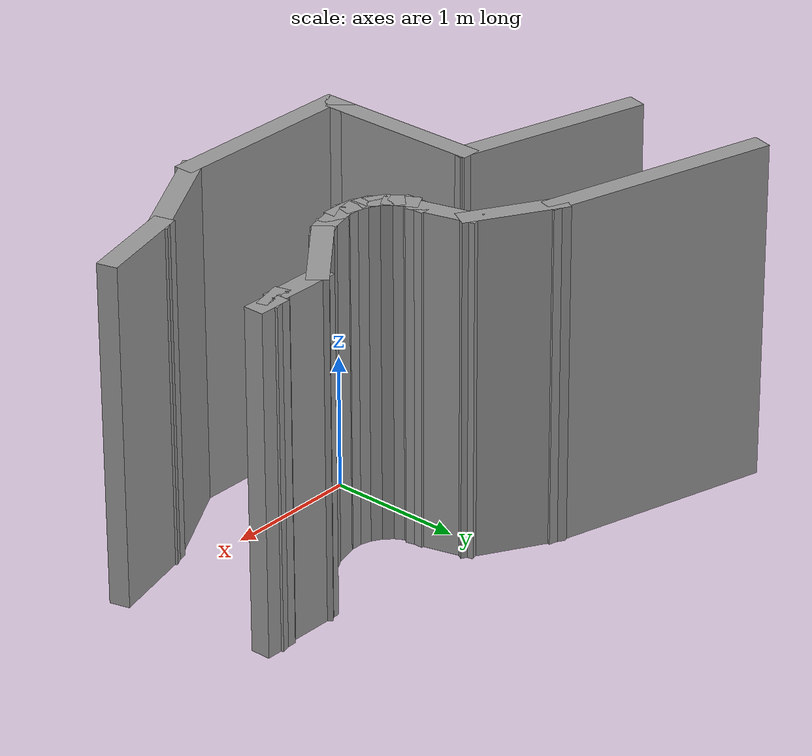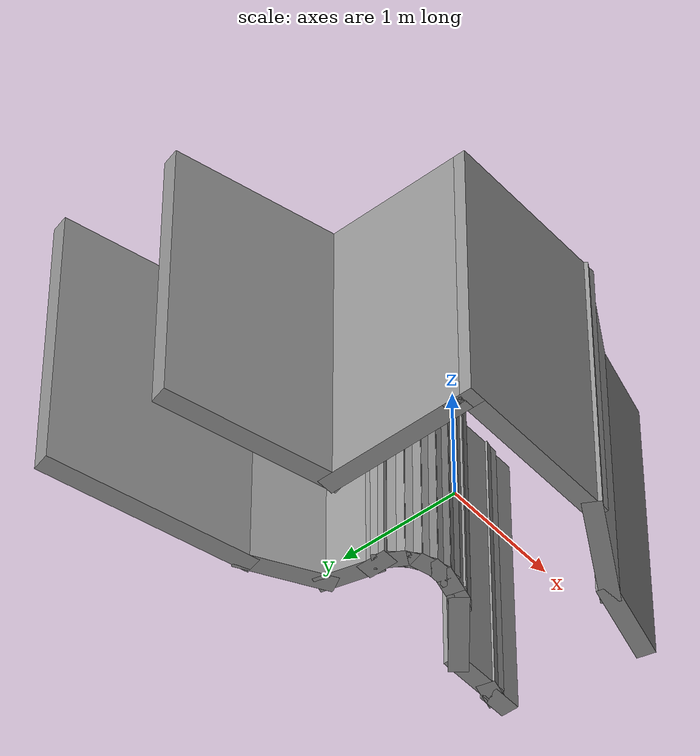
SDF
<?xml version='1.0'?>
<sdf version='1.7'>
  <model name='labirinth_startpoint_edit'>
    <pose>0.039839 0.654999 0 0 -0 0</pose>
    <link name='Wall_10'>
      <collision name='Wall_10_Collision'>
        <geometry>
          <box>
            <size>1.5 0.15 2.5</size>
          </box>
        </geometry>
        <pose>0 0 1.25 0 -0 0</pose>
      </collision>
      <visual name='Wall_10_Visual'>
        <pose>0 0 1.25 0 -0 0</pose>
        <geometry>
          <box>
            <size>1.5 0.15 2.5</size>
          </box>
        </geometry>
        <material>
          <script>
            <uri>file://media/materials/scripts/gazebo.material</uri>
            <name>Gazebo/Grey</name>
          </script>
          <ambient>1 1 1 1</ambient>
        </material>
        <meta>
          <layer>0</layer>
        </meta>
      </visual>
      <pose>0.019161 -1.28441 0 0 -0 0</pose>
    </link>
    <link name='Wall_11'>
      <collision name='Wall_11_Collision'>
        <geometry>
          <box>
            <size>1 0.15 2.5</size>
          </box>
        </geometry>
        <pose>0 0 1.25 0 -0 0</pose>
      </collision>
      <visual name='Wall_11_Visual'>
        <pose>0 0 1.25 0 -0 0</pose>
        <geometry>
          <box>
            <size>1 0.15 2.5</size>
          </box>
        </geometry>
        <material>
          <script>
            <uri>file://media/materials/scripts/gazebo.material</uri>
            <name>Gazebo/Grey</name>
          </script>
          <ambient>1 1 1 1</ambient>
        </material>
        <meta>
          <layer>0</layer>
        </meta>
      </visual>
      <pose>1.06222 -1.07191 0 0 -0 0.523599</pose>
    </link>
    <link name='Wall_12'>
      <collision name='Wall_12_Collision'>
        <geometry>
          <box>
            <size>0.75 0.15 2.5</size>
          </box>
        </geometry>
        <pose>0 0 1.25 0 -0 0</pose>
      </collision>
      <visual name='Wall_12_Visual'>
        <pose>0 0 1.25 0 -0 0</pose>
        <geometry>
          <box>
            <size>0.75 0.15 2.5</size>
          </box>
        </geometry>
        <material>
          <script>
            <uri>file://media/materials/scripts/gazebo.material</uri>
            <name>Gazebo/Grey</name>
          </script>
          <ambient>1 1 1 1</ambient>
        </material>
        <meta>
          <layer>0</layer>
        </meta>
      </visual>
      <pose>1.72006 -0.781759 0 0 -0 0.261799</pose>
    </link>
    <link name='Wall_15'>
      <collision name='Wall_15_Collision'>
        <geometry>
          <box>
            <size>1.75 0.15 2.5</size>
          </box>
        </geometry>
        <pose>0 0 1.25 0 -0 0</pose>
      </collision>
      <visual name='Wall_15_Visual'>
        <pose>0 0 1.25 0 -0 0</pose>
        <geometry>
          <box>
            <size>1.75 0.15 2.5</size>
          </box>
        </geometry>
        <material>
          <script>
            <uri>file://media/materials/scripts/gazebo.material</uri>
            <name>Gazebo/Grey</name>
          </script>
          <ambient>1 1 1 1</ambient>
        </material>
        <meta>
          <layer>0</layer>
        </meta>
      </visual>
      <pose>-1.2371 1.08795 0 0 -0 -0.261799</pose>
    </link>
    <link name='Wall_16'>
      <collision name='Wall_16_Collision'>
        <geometry>
          <box>
            <size>0.75 0.15 2.5</size>
          </box>
        </geometry>
        <pose>0 0 1.25 0 -0 0</pose>
      </collision>
      <visual name='Wall_16_Visual'>
        <pose>0 0 1.25 0 -0 0</pose>
        <geometry>
          <box>
            <size>0.75 0.15 2.5</size>
          </box>
        </geometry>
        <material>
          <script>
            <uri>file://media/materials/scripts/gazebo.material</uri>
            <name>Gazebo/Grey</name>
          </script>
          <ambient>1 1 1 1</ambient>
        </material>
        <meta>
          <layer>0</layer>
        </meta>
      </visual>
      <pose>-0.20455 0.73089 0 0 -0 -0.523599</pose>
    </link>
    <link name='Wall_17'>
      <collision name='Wall_17_Collision'>
        <geometry>
          <box>
            <size>0.5 0.15 2.5</size>
          </box>
        </geometry>
        <pose>0 0 1.25 0 -0 0</pose>
      </collision>
      <visual name='Wall_17_Visual'>
        <pose>0 0 1.25 0 -0 0</pose>
        <geometry>
          <box>
            <size>0.5 0.15 2.5</size>
          </box>
        </geometry>
        <material>
          <script>
            <uri>file://media/materials/scripts/gazebo.material</uri>
            <name>Gazebo/Grey</name>
          </script>
          <ambient>1 1 1 1</ambient>
        </material>
        <meta>
          <layer>0</layer>
        </meta>
      </visual>
      <pose>0.100551 0.411853 0 0 -0 -1.309</pose>
    </link>
    <link name='Wall_18'>
      <collision name='Wall_18_Collision'>
        <geometry>
          <box>
            <size>0.25 0.15 2.5</size>
          </box>
        </geometry>
        <pose>0 0 1.25 0 -0 0</pose>
      </collision>
      <visual name='Wall_18_Visual'>
        <pose>0 0 1.25 0 -0 0</pose>
        <geometry>
          <box>
            <size>0.25 0.15 2.5</size>
          </box>
        </geometry>
        <material>
          <script>
            <uri>file://media/materials/scripts/gazebo.material</uri>
            <name>Gazebo/Grey</name>
          </script>
          <ambient>1 1 1 1</ambient>
        </material>
        <meta>
          <layer>0</layer>
        </meta>
      </visual>
      <pose>0.145845 0.192816 0 0 -0 -1.5708</pose>
    </link>
    <link name='Wall_19'>
      <collision name='Wall_19_Collision'>
        <geometry>
          <box>
            <size>0.25 0.15 2.5</size>
          </box>
        </geometry>
        <pose>0 0 1.25 0 -0 0</pose>
      </collision>
      <visual name='Wall_19_Visual'>
        <pose>0 0 1.25 0 -0 0</pose>
        <geometry>
          <box>
            <size>0.25 0.15 2.5</size>
          </box>
        </geometry>
        <material>
          <script>
            <uri>file://media/materials/scripts/gazebo.material</uri>
            <name>Gazebo/Grey</name>
          </script>
          <ambient>1 1 1 1</ambient>
        </material>
        <meta>
          <layer>0</layer>
        </meta>
      </visual>
      <pose>0.170845 0.099515 0 0 -0 -1.0472</pose>
    </link>
    <link name='Wall_2'>
      <collision name='Wall_2_Collision'>
        <geometry>
          <box>
            <size>0.5 0.15 2.5</size>
          </box>
        </geometry>
        <pose>0 0 1.25 0 -0 0</pose>
      </collision>
      <visual name='Wall_2_Visual'>
        <pose>0 0 1.25 0 -0 0</pose>
        <geometry>
          <box>
            <size>0.5 0.15 2.5</size>
          </box>
        </geometry>
        <material>
          <script>
            <uri>file://media/materials/scripts/gazebo.material</uri>
            <name>Gazebo/Grey</name>
          </script>
          <ambient>1 1 1 1</ambient>
        </material>
        <meta>
          <layer>0</layer>
        </meta>
      </visual>
      <pose>1.47101 0.397957 0 0 -0 0</pose>
    </link>
    <link name='Wall_20'>
      <collision name='Wall_20_Collision'>
        <geometry>
          <box>
            <size>0.25 0.15 2.5</size>
          </box>
        </geometry>
        <pose>0 0 1.25 0 -0 0</pose>
      </collision>
      <visual name='Wall_20_Visual'>
        <pose>0 0 1.25 0 -0 0</pose>
        <geometry>
          <box>
            <size>0.25 0.15 2.5</size>
          </box>
        </geometry>
        <material>
          <script>
            <uri>file://media/materials/scripts/gazebo.material</uri>
            <name>Gazebo/Grey</name>
          </script>
          <ambient>1 1 1 1</ambient>
        </material>
        <meta>
          <layer>0</layer>
        </meta>
      </visual>
      <pose>0.2312 0.020859 0 0 -0 -0.785398</pose>
    </link>
    <link name='Wall_21'>
      <collision name='Wall_21_Collision'>
        <geometry>
          <box>
            <size>0.25 0.15 2.5</size>
          </box>
        </geometry>
        <pose>0 0 1.25 0 -0 0</pose>
      </collision>
      <visual name='Wall_21_Visual'>
        <pose>0 0 1.25 0 -0 0</pose>
        <geometry>
          <box>
            <size>0.25 0.15 2.5</size>
          </box>
        </geometry>
        <material>
          <script>
            <uri>file://media/materials/scripts/gazebo.material</uri>
            <name>Gazebo/Grey</name>
          </script>
          <ambient>1 1 1 1</ambient>
        </material>
        <meta>
          <layer>0</layer>
        </meta>
      </visual>
      <pose>0.309857 -0.039497 0 0 -0 -0.523599</pose>
    </link>
    <link name='Wall_22'>
      <collision name='Wall_22_Collision'>
        <geometry>
          <box>
            <size>0.25 0.15 2.5</size>
          </box>
        </geometry>
        <pose>0 0 1.25 0 -0 0</pose>
      </collision>
      <visual name='Wall_22_Visual'>
        <pose>0 0 1.25 0 -0 0</pose>
        <geometry>
          <box>
            <size>0.25 0.15 2.5</size>
          </box>
        </geometry>
        <material>
          <script>
            <uri>file://media/materials/scripts/gazebo.material</uri>
            <name>Gazebo/Grey</name>
          </script>
          <ambient>1 1 1 1</ambient>
        </material>
        <meta>
          <layer>0</layer>
        </meta>
      </visual>
      <pose>0.401454 -0.077438 0 0 -0 -0.261799</pose>
    </link>
    <link name='Wall_23'>
      <collision name='Wall_23_Collision'>
        <geometry>
          <box>
            <size>0.25 0.15 2.5</size>
          </box>
        </geometry>
        <pose>0 0 1.25 0 -0 0</pose>
      </collision>
      <visual name='Wall_23_Visual'>
        <pose>0 0 1.25 0 -0 0</pose>
        <geometry>
          <box>
            <size>0.25 0.15 2.5</size>
          </box>
        </geometry>
        <material>
          <script>
            <uri>file://media/materials/scripts/gazebo.material</uri>
            <name>Gazebo/Grey</name>
          </script>
          <ambient>1 1 1 1</ambient>
        </material>
        <meta>
          <layer>0</layer>
        </meta>
      </visual>
      <pose>0.49975 -0.090379 0 0 -0 0</pose>
    </link>
    <link name='Wall_24'>
      <collision name='Wall_24_Collision'>
        <geometry>
          <box>
            <size>0.25 0.15 2.5</size>
          </box>
        </geometry>
        <pose>0 0 1.25 0 -0 0</pose>
      </collision>
      <visual name='Wall_24_Visual'>
        <pose>0 0 1.25 0 -0 0</pose>
        <geometry>
          <box>
            <size>0.25 0.15 2.5</size>
          </box>
        </geometry>
        <material>
          <script>
            <uri>file://media/materials/scripts/gazebo.material</uri>
            <name>Gazebo/Grey</name>
          </script>
          <ambient>1 1 1 1</ambient>
        </material>
        <meta>
          <layer>0</layer>
        </meta>
      </visual>
      <pose>0.598047 -0.077438 0 0 -0 0.261799</pose>
    </link>
    <link name='Wall_25'>
      <collision name='Wall_25_Collision'>
        <geometry>
          <box>
            <size>0.25 0.15 2.5</size>
          </box>
        </geometry>
        <pose>0 0 1.25 0 -0 0</pose>
      </collision>
      <visual name='Wall_25_Visual'>
        <pose>0 0 1.25 0 -0 0</pose>
        <geometry>
          <box>
            <size>0.25 0.15 2.5</size>
          </box>
        </geometry>
        <material>
          <script>
            <uri>file://media/materials/scripts/gazebo.material</uri>
            <name>Gazebo/Grey</name>
          </script>
          <ambient>1 1 1 1</ambient>
        </material>
        <meta>
          <layer>0</layer>
        </meta>
      </visual>
      <pose>0.694639 -0.051556 0 0 -0 0.261799</pose>
    </link>
    <link name='Wall_26'>
      <collision name='Wall_26_Collision'>
        <geometry>
          <box>
            <size>0.25 0.15 2.5</size>
          </box>
        </geometry>
        <pose>0 0 1.25 0 -0 0</pose>
      </collision>
      <visual name='Wall_26_Visual'>
        <pose>0 0 1.25 0 -0 0</pose>
        <geometry>
          <box>
            <size>0.25 0.15 2.5</size>
          </box>
        </geometry>
        <material>
          <script>
            <uri>file://media/materials/scripts/gazebo.material</uri>
            <name>Gazebo/Grey</name>
          </script>
          <ambient>1 1 1 1</ambient>
        </material>
        <meta>
          <layer>0</layer>
        </meta>
      </visual>
      <pose>0.786237 -0.013615 0 0 -0 0.523599</pose>
    </link>
    <link name='Wall_27'>
      <collision name='Wall_27_Collision'>
        <geometry>
          <box>
            <size>0.755835 0.15 2.5</size>
          </box>
        </geometry>
        <pose>0 0 1.25 0 -0 0</pose>
      </collision>
      <visual name='Wall_27_Visual'>
        <pose>0 0 1.25 0 -0 0</pose>
        <geometry>
          <box>
            <size>0.755835 0.15 2.5</size>
          </box>
        </geometry>
        <material>
          <script>
            <uri>file://media/materials/scripts/gazebo.material</uri>
            <name>Gazebo/Grey</name>
          </script>
          <ambient>1 1 1 1</ambient>
        </material>
        <meta>
          <layer>0</layer>
        </meta>
      </visual>
      <pose>1.06278 0.204671 0 0 -0 0.692003</pose>
    </link>
    <link name='Wall_3'>
      <collision name='Wall_3_Collision'>
        <geometry>
          <box>
            <size>0.25 0.15 2.5</size>
          </box>
        </geometry>
        <pose>0 0 1.25 0 -0 0</pose>
      </collision>
      <visual name='Wall_3_Visual'>
        <pose>0 0 1.25 0 -0 0</pose>
        <geometry>
          <box>
            <size>0.25 0.15 2.5</size>
          </box>
        </geometry>
        <material>
          <script>
            <uri>file://media/materials/scripts/gazebo.material</uri>
            <name>Gazebo/Grey</name>
          </script>
          <ambient>1 1 1 1</ambient>
        </material>
        <meta>
          <layer>0</layer>
        </meta>
      </visual>
      <pose>1.69431 0.410898 0 0 -0 0.261799</pose>
    </link>
    <link name='Wall_4'>
      <collision name='Wall_4_Collision'>
        <geometry>
          <box>
            <size>0.25 0.15 2.5</size>
          </box>
        </geometry>
        <pose>0 0 1.25 0 -0 0</pose>
      </collision>
      <visual name='Wall_4_Visual'>
        <pose>0 0 1.25 0 -0 0</pose>
        <geometry>
          <box>
            <size>0.25 0.15 2.5</size>
          </box>
        </geometry>
        <material>
          <script>
            <uri>file://media/materials/scripts/gazebo.material</uri>
            <name>Gazebo/Grey</name>
          </script>
          <ambient>1 1 1 1</ambient>
        </material>
        <meta>
          <layer>0</layer>
        </meta>
      </visual>
      <pose>1.79261 0.423839 0 0 -0 0</pose>
    </link>
    <link name='Wall_7'>
      <collision name='Wall_7_Collision'>
        <geometry>
          <box>
            <size>1.5 0.15 2.5</size>
          </box>
        </geometry>
        <pose>0 0 1.25 0 -0 0</pose>
      </collision>
      <visual name='Wall_7_Visual'>
        <pose>0 0 1.25 0 -0 0</pose>
        <geometry>
          <box>
            <size>1.5 0.15 2.5</size>
          </box>
        </geometry>
        <material>
          <script>
            <uri>file://media/materials/scripts/gazebo.material</uri>
            <name>Gazebo/Grey</name>
          </script>
          <ambient>1 1 1 1</ambient>
        </material>
        <meta>
          <layer>0</layer>
        </meta>
      </visual>
      <pose>-1.30784 0.090298 0 0 -0 -0.261799</pose>
    </link>
    <link name='Wall_8'>
      <collision name='Wall_8_Collision'>
        <geometry>
          <box>
            <size>1.25 0.15 2.5</size>
          </box>
        </geometry>
        <pose>0 0 1.25 0 -0 0</pose>
      </collision>
      <visual name='Wall_8_Visual'>
        <pose>0 0 1.25 0 -0 0</pose>
        <geometry>
          <box>
            <size>1.25 0.15 2.5</size>
          </box>
        </geometry>
        <material>
          <script>
            <uri>file://media/materials/scripts/gazebo.material</uri>
            <name>Gazebo/Grey</name>
          </script>
          <ambient>1 1 1 1</ambient>
        </material>
        <meta>
          <layer>0</layer>
        </meta>
      </visual>
      <pose>-0.655839 -0.634405 0 0 -0 -1.5708</pose>
    </link>
    <link name='Wall_9'>
      <collision name='Wall_9_Collision'>
        <geometry>
          <box>
            <size>0.25 0.15 2.5</size>
          </box>
        </geometry>
        <pose>0 0 1.25 0 -0 0</pose>
      </collision>
      <visual name='Wall_9_Visual'>
        <pose>0 0 1.25 0 -0 0</pose>
        <geometry>
          <box>
            <size>0.25 0.15 2.5</size>
          </box>
        </geometry>
        <material>
          <script>
            <uri>file://media/materials/scripts/gazebo.material</uri>
            <name>Gazebo/Grey</name>
          </script>
          <ambient>1 1 1 1</ambient>
        </material>
        <meta>
          <layer>0</layer>
        </meta>
      </visual>
      <pose>-0.655839 -1.2344 0 0 -0 -1.5708</pose>
    </link>
    <static>1</static>
  </model>
</sdf>
